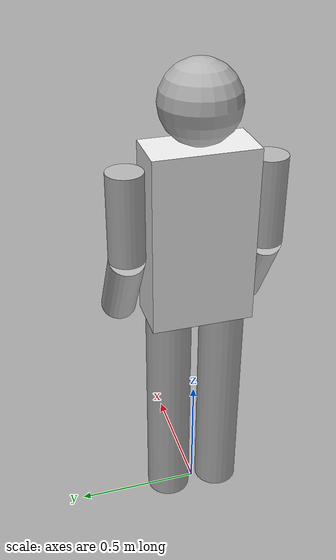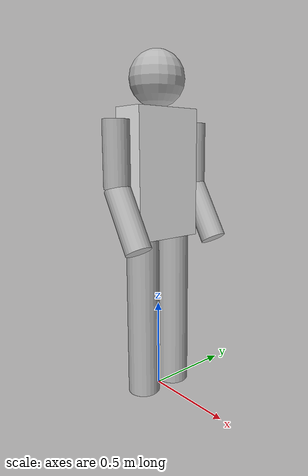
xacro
<?xml version="1.0"?>

<robot name="person"
       xmlns:xacro="http://ros.org/wiki/xacro">

  <!-- Included URDF Files -->
  <xacro:include filename="$(find bwi_gazebo_entities)/urdf/common.urdf.xacro" />
  <xacro:include filename="$(find bwi_gazebo_entities)/urdf/person.urdf.xacro" />
  <xacro:include filename="$(find bwi_gazebo_entities)/gazebo/automated_person.gazebo.xacro" />

  <!-- Add the person -->
  <xacro:person />

  <!-- Add the generic laser if you want to do any obstacle avoidance -->

</robot>

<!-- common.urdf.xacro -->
<root xmlns:xacro="http://ros.org/wiki/xacro">

  <!-- generic constants -->
  <xacro:property name="M_PI" value="3.14159265359" />

  <!-- colors -->
  <material name="light_grey">
    <color rgba="0.7 0.7 0.7 1" />
  </material>
  <material name="dark_grey">
    <color rgba="0.4 0.4 0.4 1" />
  </material>
  <material name="black">
    <color rgba="0.0 0.0 0.0 1" />
  </material>
  <material name="red">
    <color rgba="1.0 0.0 0.0 1" />
  </material>

</root>

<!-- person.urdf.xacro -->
<root xmlns:xacro="http://ros.org/wiki/xacro">

  <xacro:include filename="$(find bwi_gazebo_entities)/urdf/person.gazebo.xacro" />

  <xacro:macro name="person">

    <!-- root link, on the ground just below the person origin (torso) -->
    <link name="base_footprint">
     <visual>
        <origin xyz="0 0 0" rpy="0 0 0" />
        <geometry>
          <box size="0.001 0.001 0.001" />
        </geometry>
      </visual>
    </link>

    <joint name="base_link_joint" type="fixed">
      <origin xyz="0.0 0 1.25" rpy="0 0 0" />
      <parent link="base_footprint"/>
      <child link="base_link" />
    </joint>

    <!-- the person's torso -->
    <link name="base_link">
      <inertial>
        <mass value="50" />
        <origin xyz="0 0 -1.25" />
        <inertia ixx="50.0" ixy="0.0" ixz="0.0"
          iyy="50.0" iyz="0.0"
          izz="50.0" />
      </inertial>
      <visual>
        <geometry>
          <box size="0.2 0.4 0.7" />
        </geometry>
      </visual>
      <collision>
        <origin xyz="0 0 -1.0" />
        <geometry>
          <cylinder length="0.5" radius="0.25" />
        </geometry>
      </collision>
    </link>
    <gazebo reference="base_link">
      <material>Gazebo/White</material>
    </gazebo>

    <!-- depth perception lidar -->
    <joint name="lidar_joint" type="fixed">
      <origin xyz="0.3 0 0" rpy="0 0 0" />
      <parent link="base_link"/>
      <child link="lidar_link" />
    </joint>
    <link name="lidar_link">
      <inertial>
        <mass value="0.001" />
        <origin xyz="0 0 0" />
        <inertia ixx="0.01" ixy="0.0" ixz="0.0"
          iyy="0.01" iyz="0.0"
          izz="0.01" />
      </inertial>
    </link>

    <!-- left leg -->
    <joint name="left_leg_joint" type="fixed">
      <origin xyz="0.0 0.11 -0.35" rpy="0 0 0" />
      <parent link="base_link"/>
      <child link="left_leg_link" />
    </joint>
    <link name="left_leg_link">
      <inertial>
        <mass value="0.001" />
        <origin xyz="0 0 0" />
        <inertia ixx="1.0" ixy="0.0" ixz="0.0"
          iyy="1.0" iyz="0.0"
          izz="1.0" />
      </inertial>
      <visual>
        <origin xyz="0 0 -0.45" />
        <geometry>
          <cylinder length="0.9" radius="0.09" />
        </geometry>
        <material name="light_grey" />
      </visual>
    </link>
    <gazebo reference="left_leg_link">
      <material>Gazebo/White</material>
    </gazebo>

    <xacro:default_surface name="left_leg" />

    <!-- right leg -->
    <joint name="right_leg_joint" type="fixed">
      <origin xyz="0.0 -0.11 -0.35" rpy="0 0 0" />
      <parent link="base_link"/>
      <child link="right_leg_link" />
    </joint>
    <link name="right_leg_link">
      <inertial>
        <mass value="0.001" />
        <origin xyz="0 0 0" />
        <inertia ixx="1.0" ixy="0.0" ixz="0.0"
          iyy="1.0" iyz="0.0"
          izz="1.0" />
      </inertial>
      <visual>
        <origin xyz="0 0 -0.45" />
        <geometry>
          <cylinder length="0.9" radius="0.09" />
        </geometry>
        <material name="light_grey" />
      </visual>
    </link>
    <gazebo reference="right_leg_link">
      <material>Gazebo/White</material>
    </gazebo>

    <xacro:default_surface name="right_leg" />

    <!-- head -->
    <joint name="head_joint" type="fixed">
      <origin xyz="0 0 0.50" rpy="0 0 0" />
      <parent link="base_link"/>
      <child link="head_link" />
    </joint>
    <link name="head_link">
      <inertial>
        <mass value="0.001" />
        <origin xyz="0 0 0" />
        <inertia ixx="0.001" ixy="0.0" ixz="0.0"
          iyy="0.001" iyz="0.0"
          izz="0.001" />
      </inertial>
      <visual>
        <geometry>
          <sphere radius="0.15" />
        </geometry>
        <material name="light_grey" />
      </visual>
    </link>
    <gazebo reference="head_link">
      <material>Gazebo/White</material>
    </gazebo>

    <!-- camera -->
    <joint name="camera_joint" type="fixed">
      <origin xyz="-2 0 0.75" rpy="0 ${M_PI/8} 0" />
      <parent link="head_link"/>
      <child link="camera_link" />
    </joint>
    <link name="camera_link">
      <inertial>
        <mass value="0.001" />
        <origin xyz="0 0 0" />
        <inertia ixx="0.001" ixy="0.0" ixz="0.0"
          iyy="0.001" iyz="0.0"
          izz="0.001" />
      </inertial>
    </link>

    <!-- camera optical frame -->
    <joint name="camera_optical_joint" type="fixed">
      <origin xyz="0 0 0" rpy="-${M_PI/2} 0 -${M_PI/2}" />
      <parent link="camera_link"/>
      <child link="camera_optical_link" />
    </joint>
    <link name="camera_optical_link">
      <inertial>
        <mass value="0.001" />
        <origin xyz="0 0 0" />
        <inertia ixx="0.001" ixy="0.0" ixz="0.0"
          iyy="0.001" iyz="0.0"
          izz="0.001" />
      </inertial>
    </link>

    <!-- left arm -->
    <joint name="left_arm_joint" type="fixed">
      <origin xyz="0 0.27 0.28" rpy="0 ${M_PI} 0" />
      <parent link="base_link"/>
      <child link="left_arm_link" />
    </joint>
    <link name="left_arm_link">
      <inertial>
        <mass value="0.001" />
        <origin xyz="0 0 0" />
        <inertia ixx="0.001" ixy="0.0" ixz="0.0"
          iyy="0.001" iyz="0.0"
          izz="0.001" />
      </inertial>
      <visual>
        <origin xyz="0 0 0.175" />
        <geometry>
          <cylinder length="0.35" radius="0.07" />
        </geometry>
        <material name="light_grey" />
      </visual>
    </link>
    <gazebo reference="left_arm_link">
      <material>Gazebo/White</material>
    </gazebo>

    <!-- left fore arm -->
    <joint name="left_forearm_joint" type="fixed">
      <origin xyz="0 0 0.35" rpy="0 -${M_PI/6} 0" />
      <parent link="left_arm_link"/>
      <child link="left_forearm_link" />
    </joint>
    <link name="left_forearm_link">
      <inertial>
        <mass value="0.001" />
        <origin xyz="0 0 0" />
        <inertia ixx="0.001" ixy="0.0" ixz="0.0"
          iyy="0.001" iyz="0.0"
          izz="0.001" />
      </inertial>
      <visual>
        <origin xyz="0 0 0.175" />
        <geometry>
          <cylinder length="0.35" radius="0.07" />
        </geometry>
        <material name="light_grey" />
      </visual>
    </link>
    <gazebo reference="left_forearm_link">
      <material>Gazebo/White</material>
    </gazebo>

    <!-- right arm -->
    <joint name="right_arm_joint" type="fixed">
      <origin xyz="0 -0.27 0.28" rpy="0 ${M_PI} 0" />
      <parent link="base_link"/>
      <child link="right_arm_link" />
    </joint>
    <link name="right_arm_link">
      <inertial>
        <mass value="0.001" />
        <origin xyz="0 0 0" />
        <inertia ixx="0.001" ixy="0.0" ixz="0.0"
          iyy="0.001" iyz="0.0"
          izz="0.001" />
      </inertial>
      <visual>
        <origin xyz="0 0 0.175" />
        <geometry>
          <cylinder length="0.35" radius="0.07" />
        </geometry>
        <material name="light_grey" />
      </visual>
    </link>
    <gazebo reference="right_arm_link">
      <material>Gazebo/White</material>
    </gazebo>

    <!-- right fore arm -->
    <joint name="right_forearm_joint" type="fixed">
      <origin xyz="0 0 0.35" rpy="0 -${M_PI/6} 0" />
      <parent link="right_arm_link"/>
      <child link="right_forearm_link" />
    </joint>
    <link name="right_forearm_link">
      <inertial>
        <mass value="0.001" />
        <origin xyz="0 0 0" />
        <inertia ixx="0.001" ixy="0.0" ixz="0.0"
          iyy="0.001" iyz="0.0"
          izz="0.001" />
      </inertial>
      <visual>
        <origin xyz="0 0 0.175" />
        <geometry>
          <cylinder length="0.35" radius="0.07" />
        </geometry>
        <material name="light_grey" />
      </visual>
    </link>
    <gazebo reference="right_forearm_link">
      <material>Gazebo/White</material>
    </gazebo>

    <gazebo>
      <xacro:gazebo_person_drive />
    </gazebo>

  </xacro:macro>

</root>
